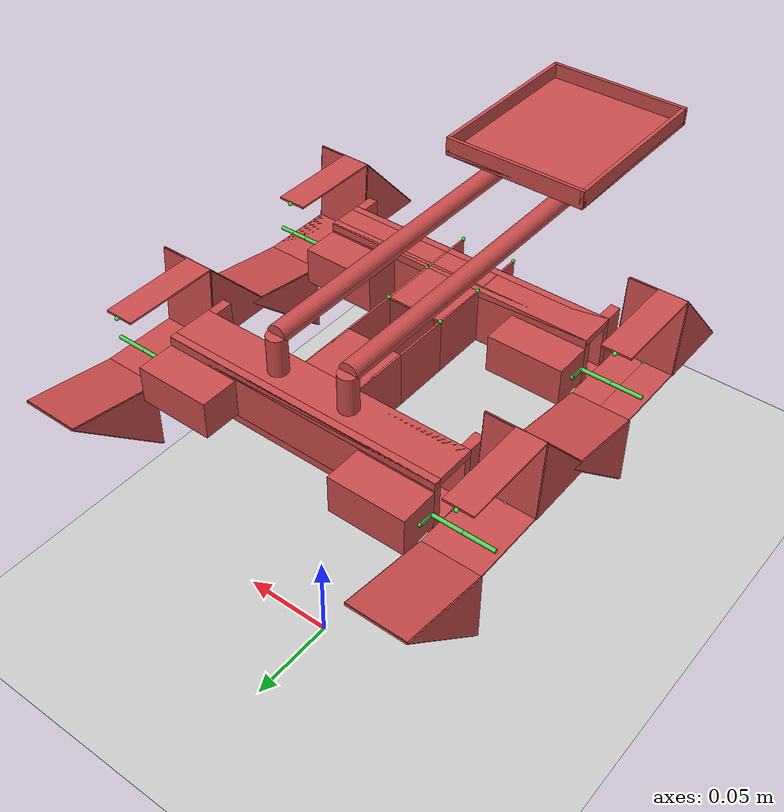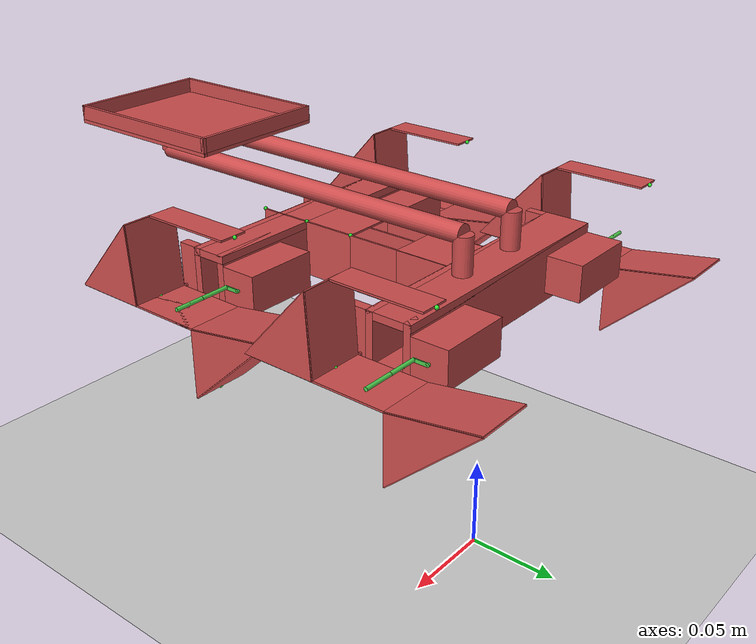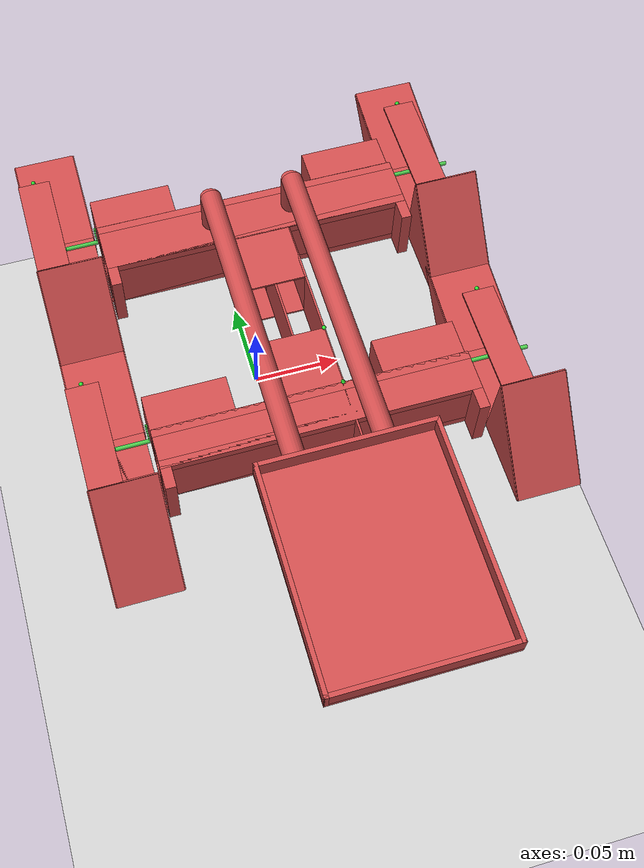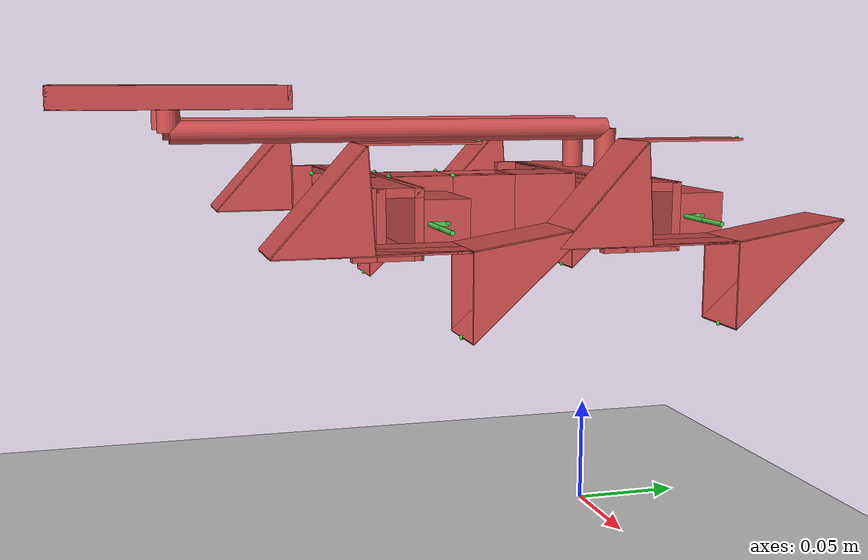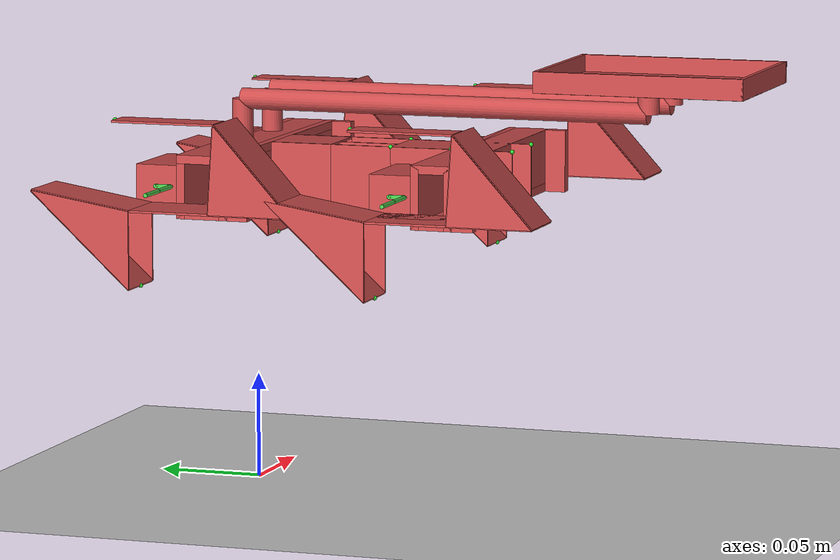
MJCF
<?xml version="1.0" ?>
<mujoco model="OptBot">
  <compiler inertiafromgeom="true" angle="radian"/>
  <option timestep="0.001" gravity="0 0 -9.81" integrator="RK4"/>
  <default>
    <joint damping="0.1" armature="0.01"/>
    <geom density="1000" friction="0.5 0.1 0.1"/>
  </default>
  <asset>
    <texture name="grid" type="2d" builtin="checker" width="512" height="512" rgb1="0.95 0.95 0.95" rgb2="1 1 1"/>
    <material name="floor_mat" texture="grid" texrepeat="50 50" specular="0.0"/>
    <mesh name="wedge_left_1_mesh" vertex="0.0 -0.0005 0.0 0.00268 -0.0005 0.04141 0.0401 -0.0005 0.0 0.0 0.0005 0.0 0.00268 0.0005 0.04141 0.0401 0.0005 0.0"/>
    <mesh name="wedge_right_1_mesh" vertex="0.0 0.0295 0.0 0.00268 0.0295 0.04141 0.0401 0.0295 0.0 0.0 0.0305 0.0 0.00268 0.0305 0.04141 0.0401 0.0305 0.0"/>
    <mesh name="link_1_child_1_wedge_left_1_mesh" vertex="0.0 -0.0005 0.0 0.0 -0.0005 -0.0367 -0.0484 -0.0005 0.0078 0.0 0.0005 0.0 0.0 0.0005 -0.0367 -0.0484 0.0005 0.0078"/>
    <mesh name="link_1_child_1_wedge_right_1_mesh" vertex="0.0 0.0295 0.0 0.0 0.0295 -0.0367 -0.0484 0.0295 0.0078 0.0 0.0305 0.0 0.0 0.0305 -0.0367 -0.0484 0.0305 0.0078"/>
    <mesh name="wedge_left_2_mesh" vertex="0.0 -0.0005 0.0 0.00268 -0.0005 0.04141 0.0401 -0.0005 0.0 0.0 0.0005 0.0 0.00268 0.0005 0.04141 0.0401 0.0005 0.0"/>
    <mesh name="wedge_right_2_mesh" vertex="0.0 0.0295 0.0 0.00268 0.0295 0.04141 0.0401 0.0295 0.0 0.0 0.0305 0.0 0.00268 0.0305 0.04141 0.0401 0.0305 0.0"/>
    <mesh name="link_1_child_2_wedge_left_2_mesh" vertex="0.0 -0.0005 0.0 0.0 -0.0005 -0.0367 -0.0484 -0.0005 0.0078 0.0 0.0005 0.0 0.0 0.0005 -0.0367 -0.0484 0.0005 0.0078"/>
    <mesh name="link_1_child_2_wedge_right_2_mesh" vertex="0.0 0.0295 0.0 0.0 0.0295 -0.0367 -0.0484 0.0295 0.0078 0.0 0.0305 0.0 0.0 0.0305 -0.0367 -0.0484 0.0305 0.0078"/>
    <mesh name="wedge_left_3_mesh" vertex="0.0 -0.0005 0.0 0.00268 -0.0005 0.04141 0.0401 -0.0005 0.0 0.0 0.0005 0.0 0.00268 0.0005 0.04141 0.0401 0.0005 0.0"/>
    <mesh name="wedge_right_3_mesh" vertex="0.0 0.0295 0.0 0.00268 0.0295 0.04141 0.0401 0.0295 0.0 0.0 0.0305 0.0 0.00268 0.0305 0.04141 0.0401 0.0305 0.0"/>
    <mesh name="link_1_child_3_wedge_left_3_mesh" vertex="0.0 -0.0005 0.0 0.0 -0.0005 -0.0367 -0.0484 -0.0005 0.0078 0.0 0.0005 0.0 0.0 0.0005 -0.0367 -0.0484 0.0005 0.0078"/>
    <mesh name="link_1_child_3_wedge_right_3_mesh" vertex="0.0 0.0295 0.0 0.0 0.0295 -0.0367 -0.0484 0.0295 0.0078 0.0 0.0305 0.0 0.0 0.0305 -0.0367 -0.0484 0.0305 0.0078"/>
    <mesh name="wedge_left_4_mesh" vertex="0.0 -0.0005 0.0 0.00268 -0.0005 0.04141 0.0401 -0.0005 0.0 0.0 0.0005 0.0 0.00268 0.0005 0.04141 0.0401 0.0005 0.0"/>
    <mesh name="wedge_right_4_mesh" vertex="0.0 0.0295 0.0 0.00268 0.0295 0.04141 0.0401 0.0295 0.0 0.0 0.0305 0.0 0.00268 0.0305 0.04141 0.0401 0.0305 0.0"/>
    <mesh name="link_1_child_4_wedge_left_4_mesh" vertex="0.0 -0.0005 0.0 0.0 -0.0005 -0.0367 -0.0484 -0.0005 0.0078 0.0 0.0005 0.0 0.0 0.0005 -0.0367 -0.0484 0.0005 0.0078"/>
    <mesh name="link_1_child_4_wedge_right_4_mesh" vertex="0.0 0.0295 0.0 0.0 0.0295 -0.0367 -0.0484 0.0295 0.0078 0.0 0.0305 0.0 0.0 0.0305 -0.0367 -0.0484 0.0305 0.0078"/>
  </asset>
  <worldbody>
    <geom name="floor" type="plane" size="10 10 0.1" material="floor_mat" rgba="0.8 0.8 0.8 1"/>
    <body name="chassis" pos="0 0 0.15">
      <joint name="root_free" type="free"/>
      <geom name="chassis_top" type="box" size="0.075 0.0125 0.002" pos="0 0 0.013" rgba="0.8 0.3 0.3 1" mass="10"/>
      <geom name="chassis_bottom" type="box" size="0.075 0.0125 0.002" pos="0 0 -0.013" rgba="0.8 0.3 0.3 1" mass="10"/>
      <geom name="chassis_front" type="box" size="0.075 0.002 0.015" pos="0 0.0105 0" rgba="0.8 0.3 0.3 1" mass="10"/>
      <geom name="chassis_back" type="box" size="0.075 0.002 0.015" pos="0 -0.0105 0" rgba="0.8 0.3 0.3 1" mass="10"/>
      <geom name="support_1_1" type="cylinder" size="0.005 0.01" pos="-0.02 0.0 0.026" rgba="0.8 0.3 0.3 1"/>
      <geom name="support_1_2" type="cylinder" size="0.005 0.1" pos="-0.02 -0.1 0.036" rgba="0.8 0.3 0.3 1" euler="1.57 0 0"/>
      <geom name="support_1_3" type="cylinder" size="0.005 0.005" pos="-0.02 -0.2 0.040999999999999995" rgba="0.8 0.3 0.3 1"/>
      <geom name="support_2_1" type="cylinder" size="0.005 0.01" pos="0.02 0.0 0.026" rgba="0.8 0.3 0.3 1"/>
      <geom name="support_2_2" type="cylinder" size="0.005 0.1" pos="0.02 -0.1 0.036" rgba="0.8 0.3 0.3 1" euler="1.57 0 0"/>
      <geom name="support_2_3" type="cylinder" size="0.005 0.005" pos="0.02 -0.2 0.040999999999999995" rgba="0.8 0.3 0.3 1"/>
      <geom name="case_bottom" type="box" size="0.04 0.05 0.001" pos="0.0 -0.2 0.047" rgba="0.8 0.3 0.3 1"/>
      <geom name="case_front" type="box" size="0.04 0.001 0.005" pos="0.0 -0.15100000000000002 0.051" rgba="0.8 0.3 0.3 1"/>
      <geom name="case_back" type="box" size="0.04 0.001 0.005" pos="0.0 -0.249 0.051" rgba="0.8 0.3 0.3 1"/>
      <geom name="case_left" type="box" size="0.001 0.05 0.005" pos="-0.039 -0.2 0.051" rgba="0.8 0.3 0.3 1"/>
      <geom name="case_right" type="box" size="0.001 0.05 0.005" pos="0.039 -0.2 0.051" rgba="0.8 0.3 0.3 1"/>
      <geom name="leg_support_left" type="box" size="0.0025 0.005 0.015" pos="-0.0725 -0.0175 0" rgba="0.8 0.3 0.3 1"/>
      <geom name="leg_support_right" type="box" size="0.0025 0.005 0.015" pos="0.0725 -0.0175 0" rgba="0.8 0.3 0.3 1"/>
      <geom name="leg_shaft_left" type="cylinder" size="0.001 0.001" pos="-0.075 -0.015500000000000002 -0.0078" rgba="0.8 0.3 0.3 1" euler="0 1.57 0"/>
      <geom name="leg_shaft_right" type="cylinder" size="0.001 0.001" pos="0.075 -0.015500000000000002 -0.0078" rgba="0.8 0.3 0.3 1" euler="0 1.57 0"/>
      <geom name="leg_motor_left" type="box" size="0.02 0.01 0.01" pos="-0.05499999999999999 0.0225 0" rgba="0.8 0.3 0.3 1"/>
      <geom name="leg_motor_right" type="box" size="0.02 0.01 0.01" pos="0.05499999999999999 0.0225 0" rgba="0.8 0.3 0.3 1"/>
      <body name="motor_rotor_1" pos="0.0751 0.0225 0" euler="0 0 -1.57">
        <joint name="motor_joint_1" type="hinge" axis="0 1 0" limited="false"/>
        <geom name="motor_geom_1" type="cylinder" size="0.001 0.0005" pos="0 0.0005 0" rgba="0.3 0.8 0.3 1" mass="0.1" euler="1.57 0 0"/>
        <geom name="motor_arm_1" type="box" size="0.00375 0.00025 0.001" pos="0.00375 0.00075 0" rgba="0.3 0.8 0.3 1" mass="0.1"/>
        <body name="motor_shaft_body_1" pos="0.0075 0.0085 0">
          <joint name="motor_shaft_joint_1" type="hinge" axis="0 1 0" limited="false"/>
          <geom name="motor_shaft_1" type="cylinder" size="0.001 0.008" pos="0 0 0" rgba="0.3 0.8 0.3 1" mass="0.1" euler="1.57 0 0"/>
          <site name="motor_shaft_site_1" type="sphere" pos="0 0 0" size="0.001" rgba="0.9 0.2 0.2 1"/>
          <body name="motor_shaft_body_ext_1" pos="0 0.016 0">
            <joint name="motor_shaft_joint_ext_1" type="hinge" axis="0 1 0" limited="false"/>
            <geom name="motor_shaft_ext_1" type="cylinder" size="0.001 0.008" pos="0 0 0" rgba="0.3 0.8 0.3 1" mass="0.1" euler="1.57 0 0"/>
            <site name="motor_shaft_ext_site_1" type="sphere" pos="0 0 0" size="0.001" rgba="0.9 0.2 0.2 1"/>
          </body>
        </body>
      </body>
      <body name="motor_rotor_2" pos="-0.0751 0.0225 0" euler="3.14 0 1.57">
        <joint name="motor_joint_2" type="hinge" axis="0 1 0" limited="false"/>
        <geom name="motor_geom_2" type="cylinder" size="0.001 0.0005" pos="0 0.0005 0" rgba="0.3 0.8 0.3 1" mass="0.1" euler="1.57 0 0"/>
        <geom name="motor_arm_2" type="box" size="0.00375 0.00025 0.001" pos="0.00375 0.00075 0" rgba="0.3 0.8 0.3 1" mass="0.1"/>
        <body name="motor_shaft_body_2" pos="0.0075 0.0085 0">
          <joint name="motor_shaft_joint_2" type="hinge" axis="0 1 0" limited="false"/>
          <geom name="motor_shaft_2" type="cylinder" size="0.001 0.008" pos="0 0 0" rgba="0.3 0.8 0.3 1" mass="0.1" euler="1.57 0 0"/>
          <site name="motor_shaft_site_2" type="sphere" pos="0 0 0" size="0.001" rgba="0.9 0.2 0.2 1"/>
          <body name="motor_shaft_body_ext_2" pos="0 0.016 0">
            <joint name="motor_shaft_joint_ext_2" type="hinge" axis="0 1 0" limited="false"/>
            <geom name="motor_shaft_ext_2" type="cylinder" size="0.001 0.008" pos="0 0 0" rgba="0.3 0.8 0.3 1" mass="0.1" euler="1.57 0 0"/>
            <site name="motor_shaft_ext_site_2" type="sphere" pos="0 0 0" size="0.001" rgba="0.9 0.2 0.2 1"/>
          </body>
        </body>
      </body>
      <body name="hollow_wedge_1" pos="0.077 -0.0155 -0.0078" euler="0 0 -1.57">
        <joint name="wedge_joint_1" type="hinge" axis="0 1 0" limited="false"/>
        <geom name="wedge_front_1" type="box" size="0.0279 0.015 0.0005" pos="0.02138516581405154 0.015 0.02070088819033709" rgba="0.8 0.3 0.3 1" euler="0.0 0.836 0.0"/>
        <geom name="wedge_back_1" type="box" size="0.02075 0.015 0.0005" pos="0.0013364718128082576 0.015 0.020706458702786947" rgba="0.8 0.3 0.3 1" euler="0.0 1.6355899999999999 0.0"/>
        <geom name="wedge_left_1" type="mesh" mesh="wedge_left_1_mesh" rgba="0.8 0.3 0.3 1"/>
        <geom name="wedge_right_1" type="mesh" mesh="wedge_right_1_mesh" rgba="0.8 0.3 0.3 1"/>
        <body name="link_0_1" pos="0.00268 0.0075 0.04141">
          <joint name="link_0_joint_1" type="hinge" axis="0 1 0" limited="false"/>
          <geom name="link_0_1" type="box" size="0.025 0.0075 0.0005" pos="-0.025 0 0" rgba="0.8 0.3 0.3 1"/>
          <site name="link_0_site_1" type="sphere" pos="-0.051000000000000004 0 0" size="0.001" rgba="0.2 0.9 0.2 1"/>
        </body>
        <body name="link_1_1" pos="0.0 0.015 0.0">
          <joint name="link_1_joint_1" type="hinge" axis="0 1 0" limited="false"/>
          <geom name="link_1_1" type="box" size="0.01965 0.015 0.0005" pos="-0.01965 0 0" rgba="0.8 0.3 0.3 1"/>
          <body name="link_1_child_1" pos="-0.0393 -0.015 0">
            <joint name="link_1_child_joint_1" type="hinge" axis="0 1 0" limited="false"/>
            <geom name="link_1_child_1_wedge_front_1" type="box" size="0.0245 0.015 0.0005" pos="-0.02418706844270286 0.015 0.0039032960620490244" rgba="0.8 0.3 0.3 1" euler="0.0 0.15999999999999992 0.0"/>
            <geom name="link_1_child_1_wedge_back_1" type="box" size="0.03285 0.015 0.0005" pos="-0.024214342950638658 0.015 -0.014501169051752846" rgba="0.8 0.3 0.3 1" euler="0.0 0.7420000000000001 0.0"/>
            <geom name="link_1_child_1_wedge_left_1" type="mesh" mesh="link_1_child_1_wedge_left_1_mesh" rgba="0.8 0.3 0.3 1"/>
            <geom name="link_1_child_1_wedge_right_1" type="mesh" mesh="link_1_child_1_wedge_right_1_mesh" rgba="0.8 0.3 0.3 1"/>
            <site name="wedge_site_1_1" type="sphere" pos="0 0.015 -0.0367" size="0.001" rgba="0.2 0.9 0.2 1"/>
            <body name="link_3_1" pos="0.0 0.0075 0.0">
              <joint name="link_3_joint_1" type="hinge" axis="0 1 0" limited="false"/>
              <geom name="link_3_1" type="box" size="0.0309 0.0075 0.0005" pos="0.0309 0.015 0" rgba="0.8 0.3 0.3 1"/>
              <site name="link_3_site_1" type="sphere" pos="0.0619 0.015 0" size="0.001" rgba="0.2 0.9 0.2 1"/>
            </body>
          </body>
        </body>
        <body name="link_2_1" pos="0.0401 0.015 0.0">
          <joint name="link_2_joint_1" type="hinge" axis="0 1 0" limited="false"/>
          <geom name="link_2_1" type="box" size="0.0197 0.015 0.0005" pos="-0.0197 0 0" rgba="0.8 0.3 0.3 1"/>
          <site name="link_2_site_1" type="sphere" pos="-0.0404 0 0" size="0.001" rgba="0.2 0.9 0.2 1"/>
        </body>
      </body>
      <body name="hollow_wedge_2" pos="-0.107 -0.0155 -0.0078" euler="0 0 -1.57">
        <joint name="wedge_joint_2" type="hinge" axis="0 1 0" limited="false"/>
        <geom name="wedge_front_2" type="box" size="0.0279 0.015 0.0005" pos="0.02138516581405154 0.015 0.02070088819033709" rgba="0.8 0.3 0.3 1" euler="0.0 0.836 0.0"/>
        <geom name="wedge_back_2" type="box" size="0.02075 0.015 0.0005" pos="0.0013364718128082576 0.015 0.020706458702786947" rgba="0.8 0.3 0.3 1" euler="0.0 1.6355899999999999 0.0"/>
        <geom name="wedge_left_2" type="mesh" mesh="wedge_left_2_mesh" rgba="0.8 0.3 0.3 1"/>
        <geom name="wedge_right_2" type="mesh" mesh="wedge_right_2_mesh" rgba="0.8 0.3 0.3 1"/>
        <body name="link_0_2" pos="0.00268 0.0075 0.04141">
          <joint name="link_0_joint_2" type="hinge" axis="0 1 0" limited="false"/>
          <geom name="link_0_2" type="box" size="0.025 0.0075 0.0005" pos="-0.025 0 0" rgba="0.8 0.3 0.3 1"/>
          <site name="link_0_site_2" type="sphere" pos="-0.051000000000000004 0 0" size="0.001" rgba="0.2 0.9 0.2 1"/>
        </body>
        <body name="link_1_2" pos="0.0 0.015 0.0">
          <joint name="link_1_joint_2" type="hinge" axis="0 1 0" limited="false"/>
          <geom name="link_1_2" type="box" size="0.01965 0.015 0.0005" pos="-0.01965 0 0" rgba="0.8 0.3 0.3 1"/>
          <body name="link_1_child_2" pos="-0.0393 -0.015 0">
            <joint name="link_1_child_joint_2" type="hinge" axis="0 1 0" limited="false"/>
            <geom name="link_1_child_2_wedge_front_2" type="box" size="0.0245 0.015 0.0005" pos="-0.02418706844270286 0.015 0.0039032960620490244" rgba="0.8 0.3 0.3 1" euler="0.0 0.15999999999999992 0.0"/>
            <geom name="link_1_child_2_wedge_back_2" type="box" size="0.03285 0.015 0.0005" pos="-0.024214342950638658 0.015 -0.014501169051752846" rgba="0.8 0.3 0.3 1" euler="0.0 0.7420000000000001 0.0"/>
            <geom name="link_1_child_2_wedge_left_2" type="mesh" mesh="link_1_child_2_wedge_left_2_mesh" rgba="0.8 0.3 0.3 1"/>
            <geom name="link_1_child_2_wedge_right_2" type="mesh" mesh="link_1_child_2_wedge_right_2_mesh" rgba="0.8 0.3 0.3 1"/>
            <site name="wedge_site_1_2" type="sphere" pos="0 0.015 -0.0367" size="0.001" rgba="0.2 0.9 0.2 1"/>
            <body name="link_3_2" pos="0.0 0.0075 0.0">
              <joint name="link_3_joint_2" type="hinge" axis="0 1 0" limited="false"/>
              <geom name="link_3_2" type="box" size="0.0309 0.0075 0.0005" pos="0.0309 0.015 0" rgba="0.8 0.3 0.3 1"/>
              <site name="link_3_site_2" type="sphere" pos="0.0619 0.015 0" size="0.001" rgba="0.2 0.9 0.2 1"/>
            </body>
          </body>
        </body>
        <body name="link_2_2" pos="0.0401 0.015 0.0">
          <joint name="link_2_joint_2" type="hinge" axis="0 1 0" limited="false"/>
          <geom name="link_2_2" type="box" size="0.0197 0.015 0.0005" pos="-0.0197 0 0" rgba="0.8 0.3 0.3 1"/>
          <site name="link_2_site_2" type="sphere" pos="-0.0404 0 0" size="0.001" rgba="0.2 0.9 0.2 1"/>
        </body>
      </body>
      <body name="spine" pos="0.0 -0.0125 0.0" euler="0 0 0">
        <body name="inner_segment_1" pos="0 -0.0075 0">
          <geom name="inner_segment_1" type="box" size="0.0005 0.0075 0.014" pos="0 0 0" rgba="0.8 0.3 0.3 1"/>
          <geom name="inner_segment_1_cover" type="box" size="0.015 0.015 0.0005" pos="0 -0.0075 -0.0145" rgba="0.8 0.3 0.3 1"/>
          <geom name="inner_segment_1_cover_2" type="box" size="0.015 0.015 0.0005" pos="0 -0.0075 0.0145" rgba="0.8 0.3 0.3 1"/>
          <body name="inner_shaft" pos="0 -0.0075 0">
            <joint name="inner_shaft" type="hinge" axis="0 0 1" limited="false"/>
            <geom name="inner_shaft" type="box" size="0.0005035590277777778 0.029984375 0.014449652777777778" pos="0 -0.029984375 0" rgba="0.8 0.3 0.3 1"/>
            <body name="inner_segment_2" pos="0 -0.05996875 0">
              <joint name="inner_segment_2" type="hinge" axis="0 0 1" limited="false"/>
              <geom name="inner_segment_2" type="box" size="0.0005 0.0075 0.014" pos="0 -0.0075 0" rgba="0.8 0.3 0.3 1"/>
              <geom name="inner_segment_2_cover" type="box" size="0.015 0.015 0.0005" pos="0 0 -0.0145" rgba="0.8 0.3 0.3 1"/>
              <geom name="inner_segment_2_cover_2" type="box" size="0.015 0.015 0.0005" pos="0 0 0.0145" rgba="0.8 0.3 0.3 1"/>
              <site name="inner_segment_2_site_1" type="sphere" pos="-0.015 -0.015 0.015" size="0.001" rgba="0.2 0.9 0.2 1"/>
              <site name="inner_segment_2_site_2" type="sphere" pos="-0.015 0.015 0.015" size="0.001" rgba="0.2 0.9 0.2 1"/>
              <site name="inner_segment_2_site_3" type="sphere" pos="0.015 -0.015 0.015" size="0.001" rgba="0.2 0.9 0.2 1"/>
              <site name="inner_segment_2_site_4" type="sphere" pos="0.015 0.015 0.015" size="0.001" rgba="0.2 0.9 0.2 1"/>
              <body name="chassis2" pos="0.0 -0.025 0" euler="0 0 0">
                <geom name="chassis2_top" type="box" size="0.075 0.01 0.002" pos="0 0 0.013" rgba="0.8 0.3 0.3 1" mass="20"/>
                <geom name="chassis2_bottom" type="box" size="0.075 0.01 0.002" pos="0 0 -0.013" rgba="0.8 0.3 0.3 1" mass="20"/>
                <geom name="chassis2_front" type="box" size="0.075 0.002 0.015" pos="0 0.008 0" rgba="0.8 0.3 0.3 1" mass="20"/>
                <geom name="chassis2_back" type="box" size="0.075 0.002 0.015" pos="0 -0.008 0" rgba="0.8 0.3 0.3 1" mass="20"/>
                <geom name="leg_support_left_2" type="box" size="0.0025 0.005 0.015" pos="-0.0725 -0.015 0" rgba="0.8 0.3 0.3 1"/>
                <geom name="leg_support_right_2" type="box" size="0.0025 0.005 0.015" pos="0.0725 -0.015 0" rgba="0.8 0.3 0.3 1"/>
                <geom name="leg_shaft_left_2" type="cylinder" size="0.001 0.001" pos="-0.075 -0.017999999999999995 -0.0078" rgba="0.8 0.3 0.3 1" euler="0 1.57 0"/>
                <geom name="leg_shaft_right_2" type="cylinder" size="0.001 0.001" pos="0.075 -0.017999999999999995 -0.0078" rgba="0.8 0.3 0.3 1" euler="0 1.57 0"/>
                <geom name="leg_motor_left_2" type="box" size="0.02 0.01 0.01" pos="-0.05499999999999999 0.02 0" rgba="0.8 0.3 0.3 1"/>
                <geom name="leg_motor_right_2" type="box" size="0.02 0.01 0.01" pos="0.05499999999999999 0.02 0" rgba="0.8 0.3 0.3 1"/>
                <body name="motor_rotor_3" pos="0.0751 0.02 0" euler="0 0 -1.57">
                  <joint name="motor_joint_3" type="hinge" axis="0 1 0" limited="false"/>
                  <geom name="motor_geom_3" type="cylinder" size="0.001 0.0005" pos="0 0.0005 0" rgba="0.3 0.8 0.3 1" mass="0.1" euler="1.57 0 0"/>
                  <geom name="motor_arm_3" type="box" size="0.00375 0.00025 0.001" pos="0.00375 0.00075 0" rgba="0.3 0.8 0.3 1" mass="0.1"/>
                  <body name="motor_shaft_body_3" pos="0.0075 0.0085 0">
                    <joint name="motor_shaft_joint_3" type="hinge" axis="0 1 0" limited="false"/>
                    <geom name="motor_shaft_3" type="cylinder" size="0.001 0.008" pos="0 0 0" rgba="0.3 0.8 0.3 1" mass="0.1" euler="1.57 0 0"/>
                    <site name="motor_shaft_site_3" type="sphere" pos="0 0 0" size="0.001" rgba="0.9 0.2 0.2 1"/>
                    <body name="motor_shaft_body_ext_3" pos="0 0.016 0">
                      <joint name="motor_shaft_joint_ext_3" type="hinge" axis="0 1 0" limited="false"/>
                      <geom name="motor_shaft_ext_3" type="cylinder" size="0.001 0.008" pos="0 0 0" rgba="0.3 0.8 0.3 1" mass="0.1" euler="1.57 0 0"/>
                      <site name="motor_shaft_ext_site_3" type="sphere" pos="0 0 0" size="0.001" rgba="0.9 0.2 0.2 1"/>
                    </body>
                  </body>
                </body>
                <body name="motor_rotor_4" pos="-0.0751 0.02 0" euler="3.14 0 1.57">
                  <joint name="motor_joint_4" type="hinge" axis="0 1 0" limited="false"/>
                  <geom name="motor_geom_4" type="cylinder" size="0.001 0.0005" pos="0 0.0005 0" rgba="0.3 0.8 0.3 1" mass="0.1" euler="1.57 0 0"/>
                  <geom name="motor_arm_4" type="box" size="0.00375 0.00025 0.001" pos="0.00375 0.00075 0" rgba="0.3 0.8 0.3 1" mass="0.1"/>
                  <body name="motor_shaft_body_4" pos="0.0075 0.0085 0">
                    <joint name="motor_shaft_joint_4" type="hinge" axis="0 1 0" limited="false"/>
                    <geom name="motor_shaft_4" type="cylinder" size="0.001 0.008" pos="0 0 0" rgba="0.3 0.8 0.3 1" mass="0.1" euler="1.57 0 0"/>
                    <site name="motor_shaft_site_4" type="sphere" pos="0 0 0" size="0.001" rgba="0.9 0.2 0.2 1"/>
                    <body name="motor_shaft_body_ext_4" pos="0 0.016 0">
                      <joint name="motor_shaft_joint_ext_4" type="hinge" axis="0 1 0" limited="false"/>
                      <geom name="motor_shaft_ext_4" type="cylinder" size="0.001 0.008" pos="0 0 0" rgba="0.3 0.8 0.3 1" mass="0.1" euler="1.57 0 0"/>
                      <site name="motor_shaft_ext_site_4" type="sphere" pos="0 0 0" size="0.001" rgba="0.9 0.2 0.2 1"/>
                    </body>
                  </body>
                </body>
                <body name="hollow_wedge_3" pos="0.077 -0.018 -0.0078" euler="0 0 -1.57">
                  <joint name="wedge_joint_3" type="hinge" axis="0 1 0" limited="false"/>
                  <geom name="wedge_front_3" type="box" size="0.0279 0.015 0.0005" pos="0.02138516581405154 0.015 0.02070088819033709" rgba="0.8 0.3 0.3 1" euler="0.0 0.836 0.0"/>
                  <geom name="wedge_back_3" type="box" size="0.02075 0.015 0.0005" pos="0.0013364718128082576 0.015 0.020706458702786947" rgba="0.8 0.3 0.3 1" euler="0.0 1.6355899999999999 0.0"/>
                  <geom name="wedge_left_3" type="mesh" mesh="wedge_left_3_mesh" rgba="0.8 0.3 0.3 1"/>
                  <geom name="wedge_right_3" type="mesh" mesh="wedge_right_3_mesh" rgba="0.8 0.3 0.3 1"/>
                  <body name="link_0_3" pos="0.00268 0.0075 0.04141">
                    <joint name="link_0_joint_3" type="hinge" axis="0 1 0" limited="false"/>
                    <geom name="link_0_3" type="box" size="0.025 0.0075 0.0005" pos="-0.025 0 0" rgba="0.8 0.3 0.3 1"/>
                    <site name="link_0_site_3" type="sphere" pos="-0.051000000000000004 0 0" size="0.001" rgba="0.2 0.9 0.2 1"/>
                  </body>
                  <body name="link_1_3" pos="0.0 0.015 0.0">
                    <joint name="link_1_joint_3" type="hinge" axis="0 1 0" limited="false"/>
                    <geom name="link_1_3" type="box" size="0.01965 0.015 0.0005" pos="-0.01965 0 0" rgba="0.8 0.3 0.3 1"/>
                    <body name="link_1_child_3" pos="-0.0393 -0.015 0">
                      <joint name="link_1_child_joint_3" type="hinge" axis="0 1 0" limited="false"/>
                      <geom name="link_1_child_3_wedge_front_3" type="box" size="0.0245 0.015 0.0005" pos="-0.02418706844270286 0.015 0.0039032960620490244" rgba="0.8 0.3 0.3 1" euler="0.0 0.15999999999999992 0.0"/>
                      <geom name="link_1_child_3_wedge_back_3" type="box" size="0.03285 0.015 0.0005" pos="-0.024214342950638658 0.015 -0.014501169051752846" rgba="0.8 0.3 0.3 1" euler="0.0 0.7420000000000001 0.0"/>
                      <geom name="link_1_child_3_wedge_left_3" type="mesh" mesh="link_1_child_3_wedge_left_3_mesh" rgba="0.8 0.3 0.3 1"/>
                      <geom name="link_1_child_3_wedge_right_3" type="mesh" mesh="link_1_child_3_wedge_right_3_mesh" rgba="0.8 0.3 0.3 1"/>
                      <site name="wedge_site_1_3" type="sphere" pos="0 0.015 -0.0367" size="0.001" rgba="0.2 0.9 0.2 1"/>
                      <body name="link_3_3" pos="0.0 0.0075 0.0">
                        <joint name="link_3_joint_3" type="hinge" axis="0 1 0" limited="false"/>
                        <geom name="link_3_3" type="box" size="0.0309 0.0075 0.0005" pos="0.0309 0.015 0" rgba="0.8 0.3 0.3 1"/>
                        <site name="link_3_site_3" type="sphere" pos="0.0619 0.015 0" size="0.001" rgba="0.2 0.9 0.2 1"/>
                      </body>
                    </body>
                  </body>
                  <body name="link_2_3" pos="0.0401 0.015 0.0">
                    <joint name="link_2_joint_3" type="hinge" axis="0 1 0" limited="false"/>
                    <geom name="link_2_3" type="box" size="0.0197 0.015 0.0005" pos="-0.0197 0 0" rgba="0.8 0.3 0.3 1"/>
                    <site name="link_2_site_3" type="sphere" pos="-0.0404 0 0" size="0.001" rgba="0.2 0.9 0.2 1"/>
                  </body>
                </body>
                <body name="hollow_wedge_4" pos="-0.107 -0.018 -0.0078" euler="0 0 -1.57">
                  <joint name="wedge_joint_4" type="hinge" axis="0 1 0" limited="false"/>
                  <geom name="wedge_front_4" type="box" size="0.0279 0.015 0.0005" pos="0.02138516581405154 0.015 0.02070088819033709" rgba="0.8 0.3 0.3 1" euler="0.0 0.836 0.0"/>
                  <geom name="wedge_back_4" type="box" size="0.02075 0.015 0.0005" pos="0.0013364718128082576 0.015 0.020706458702786947" rgba="0.8 0.3 0.3 1" euler="0.0 1.6355899999999999 0.0"/>
                  <geom name="wedge_left_4" type="mesh" mesh="wedge_left_4_mesh" rgba="0.8 0.3 0.3 1"/>
                  <geom name="wedge_right_4" type="mesh" mesh="wedge_right_4_mesh" rgba="0.8 0.3 0.3 1"/>
                  <body name="link_0_4" pos="0.00268 0.0075 0.04141">
                    <joint name="link_0_joint_4" type="hinge" axis="0 1 0" limited="false"/>
                    <geom name="link_0_4" type="box" size="0.025 0.0075 0.0005" pos="-0.025 0 0" rgba="0.8 0.3 0.3 1"/>
                    <site name="link_0_site_4" type="sphere" pos="-0.051000000000000004 0 0" size="0.001" rgba="0.2 0.9 0.2 1"/>
                  </body>
                  <body name="link_1_4" pos="0.0 0.015 0.0">
                    <joint name="link_1_joint_4" type="hinge" axis="0 1 0" limited="false"/>
                    <geom name="link_1_4" type="box" size="0.01965 0.015 0.0005" pos="-0.01965 0 0" rgba="0.8 0.3 0.3 1"/>
                    <body name="link_1_child_4" pos="-0.0393 -0.015 0">
                      <joint name="link_1_child_joint_4" type="hinge" axis="0 1 0" limited="false"/>
                      <geom name="link_1_child_4_wedge_front_4" type="box" size="0.0245 0.015 0.0005" pos="-0.02418706844270286 0.015 0.0039032960620490244" rgba="0.8 0.3 0.3 1" euler="0.0 0.15999999999999992 0.0"/>
                      <geom name="link_1_child_4_wedge_back_4" type="box" size="0.03285 0.015 0.0005" pos="-0.024214342950638658 0.015 -0.014501169051752846" rgba="0.8 0.3 0.3 1" euler="0.0 0.7420000000000001 0.0"/>
                      <geom name="link_1_child_4_wedge_left_4" type="mesh" mesh="link_1_child_4_wedge_left_4_mesh" rgba="0.8 0.3 0.3 1"/>
                      <geom name="link_1_child_4_wedge_right_4" type="mesh" mesh="link_1_child_4_wedge_right_4_mesh" rgba="0.8 0.3 0.3 1"/>
                      <site name="wedge_site_1_4" type="sphere" pos="0 0.015 -0.0367" size="0.001" rgba="0.2 0.9 0.2 1"/>
                      <body name="link_3_4" pos="0.0 0.0075 0.0">
                        <joint name="link_3_joint_4" type="hinge" axis="0 1 0" limited="false"/>
                        <geom name="link_3_4" type="box" size="0.0309 0.0075 0.0005" pos="0.0309 0.015 0" rgba="0.8 0.3 0.3 1"/>
                        <site name="link_3_site_4" type="sphere" pos="0.0619 0.015 0" size="0.001" rgba="0.2 0.9 0.2 1"/>
                      </body>
                    </body>
                  </body>
                  <body name="link_2_4" pos="0.0401 0.015 0.0">
                    <joint name="link_2_joint_4" type="hinge" axis="0 1 0" limited="false"/>
                    <geom name="link_2_4" type="box" size="0.0197 0.015 0.0005" pos="-0.0197 0 0" rgba="0.8 0.3 0.3 1"/>
                    <site name="link_2_site_4" type="sphere" pos="-0.0404 0 0" size="0.001" rgba="0.2 0.9 0.2 1"/>
                  </body>
                </body>
              </body>
            </body>
          </body>
        </body>
        <body name="outer_segment_1_1" pos="-0.015 -0.015 0">
          <geom name="outer_segment_1_1" type="box" size="0.0005 0.015 0.015" pos="0 0 0" rgba="0.8 0.3 0.3 1"/>
          <body name="outer_shaft_1_1" pos="0 -0.015 0">
            <joint name="outer_shaft_1_1" type="hinge" axis="0 0 1" limited="false"/>
            <geom name="outer_shaft_1_1" type="box" size="0.0005 0.015 0.015" pos="0 -0.015 0" rgba="0.8 0.3 0.3 1"/>
            <body name="outer_shaft_1_2" pos="0 -0.03 0">
              <joint name="outer_shaft_1_2" type="hinge" axis="0 0 1" limited="false"/>
              <geom name="outer_shaft_1_2" type="box" size="0.0005 0.015 0.015" pos="0 -0.015 0" rgba="0.8 0.3 0.3 1"/>
              <body name="outer_segment_1_2" pos="0 -0.03 0">
                <joint name="outer_segment_1_2" type="hinge" axis="0 0 1" limited="false"/>
                <geom name="outer_segment_1_2" type="box" size="0.0005 0.015 0.015" pos="0 -0.015 0" rgba="0.8 0.3 0.3 1"/>
                <site name="outer_segment_1_2_site_1" type="sphere" pos="0 0 0.015" size="0.001" rgba="0.2 0.9 0.2 1"/>
                <site name="outer_segment_1_2_site_2" type="sphere" pos="0 -0.03 0.015" size="0.001" rgba="0.2 0.9 0.2 1"/>
              </body>
            </body>
          </body>
        </body>
        <body name="outer_segment_2_1" pos="0.015 -0.015 0">
          <geom name="outer_segment_2_1" type="box" size="0.0005 0.015 0.015" pos="0 0 0" rgba="0.8 0.3 0.3 1"/>
          <body name="outer_shaft_2_1" pos="0 -0.015 0">
            <joint name="outer_shaft_2_1" type="hinge" axis="0 0 1" limited="false"/>
            <geom name="outer_shaft_2_1" type="box" size="0.0005 0.015 0.015" pos="0 -0.015 0" rgba="0.8 0.3 0.3 1"/>
            <body name="outer_shaft_2_2" pos="0 -0.03 0">
              <joint name="outer_shaft_2_2" type="hinge" axis="0 0 1" limited="false"/>
              <geom name="outer_shaft_2_2" type="box" size="0.0005 0.015 0.015" pos="0 -0.015 0" rgba="0.8 0.3 0.3 1"/>
              <body name="outer_segment_2_2" pos="0 -0.03 0">
                <joint name="outer_segment_2_2" type="hinge" axis="0 0 1" limited="false"/>
                <geom name="outer_segment_2_2" type="box" size="0.0005 0.015 0.015" pos="0 -0.015 0" rgba="0.8 0.3 0.3 1"/>
                <site name="outer_segment_2_2_site_1" type="sphere" pos="0 0 0.015" size="0.001" rgba="0.2 0.9 0.2 1"/>
                <site name="outer_segment_2_2_site_2" type="sphere" pos="0 -0.03 0.015" size="0.001" rgba="0.2 0.9 0.2 1"/>
              </body>
            </body>
          </body>
        </body>
      </body>
    </body>
    <camera name="cam" pos="0.1 -0.15 0.6" euler="0 0 0"/>
  </worldbody>
  <equality>
    <connect name="connect1" active="true" site1="motor_shaft_site_1" site2="link_0_site_1"/>
    <connect name="connect2" active="true" site1="motor_shaft_site_2" site2="link_0_site_2"/>
    <connect name="connect3" active="true" site1="link_2_site_1" site2="wedge_site_1_1"/>
    <connect name="connect4" active="true" site1="link_2_site_2" site2="wedge_site_1_2"/>
    <connect name="connect5" active="true" site1="link_3_site_1" site2="motor_shaft_ext_site_1"/>
    <connect name="connect6" active="true" site1="link_3_site_2" site2="motor_shaft_ext_site_2"/>
    <connect name="connect7" active="true" site1="motor_shaft_site_3" site2="link_0_site_3"/>
    <connect name="connect8" active="true" site1="motor_shaft_site_4" site2="link_0_site_4"/>
    <connect name="connect9" active="true" site1="link_2_site_3" site2="wedge_site_1_3"/>
    <connect name="connect10" active="true" site1="link_2_site_4" site2="wedge_site_1_4"/>
    <connect name="connect11" active="true" site1="link_3_site_3" site2="motor_shaft_ext_site_3"/>
    <connect name="connect12" active="true" site1="link_3_site_4" site2="motor_shaft_ext_site_4"/>
    <connect name="connect13" active="true" site1="inner_segment_2_site_2" site2="outer_segment_1_2_site_1"/>
    <connect name="connect14" active="true" site1="inner_segment_2_site_1" site2="outer_segment_1_2_site_2"/>
    <connect name="connect15" active="true" site1="inner_segment_2_site_4" site2="outer_segment_2_2_site_1"/>
    <connect name="connect16" active="true" site1="inner_segment_2_site_3" site2="outer_segment_2_2_site_2"/>
  </equality>
  <actuator>
    <velocity name="motor_joint_1_vel" joint="motor_joint_1" kv="5.0" ctrlrange="-20 20"/>
    <velocity name="motor_joint_2_vel" joint="motor_joint_2" kv="5.0" ctrlrange="-20 20"/>
    <velocity name="motor_joint_3_vel" joint="motor_joint_3" kv="5.0" ctrlrange="-20 20"/>
    <velocity name="motor_joint_4_vel" joint="motor_joint_4" kv="5.0" ctrlrange="-20 20"/>
  </actuator>
</mujoco>
